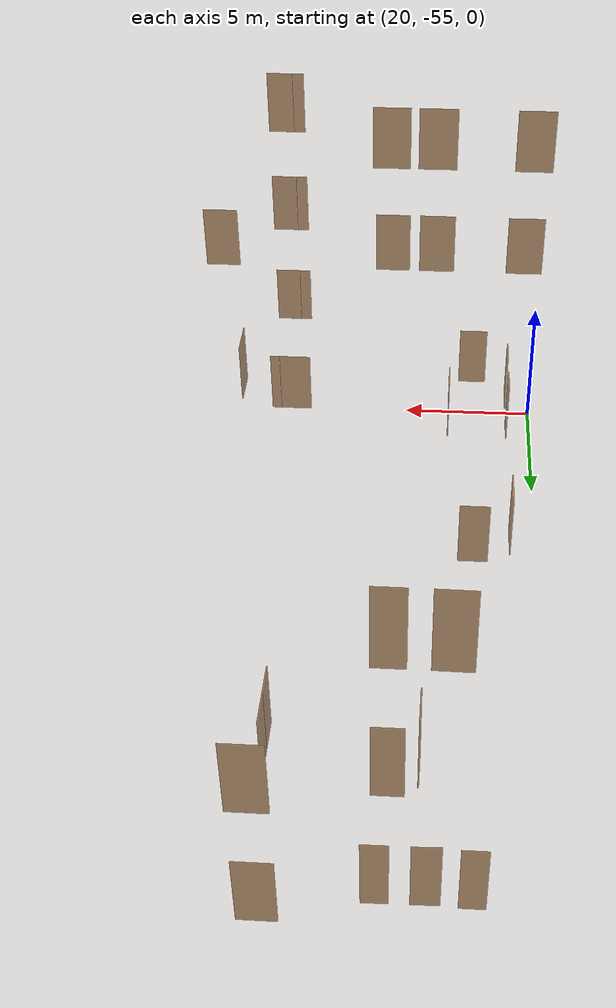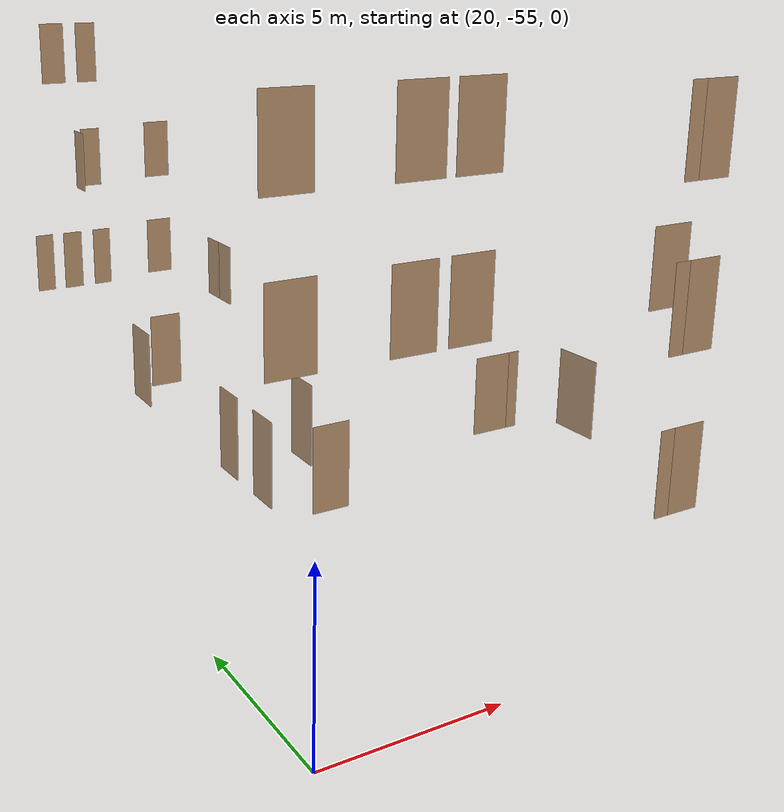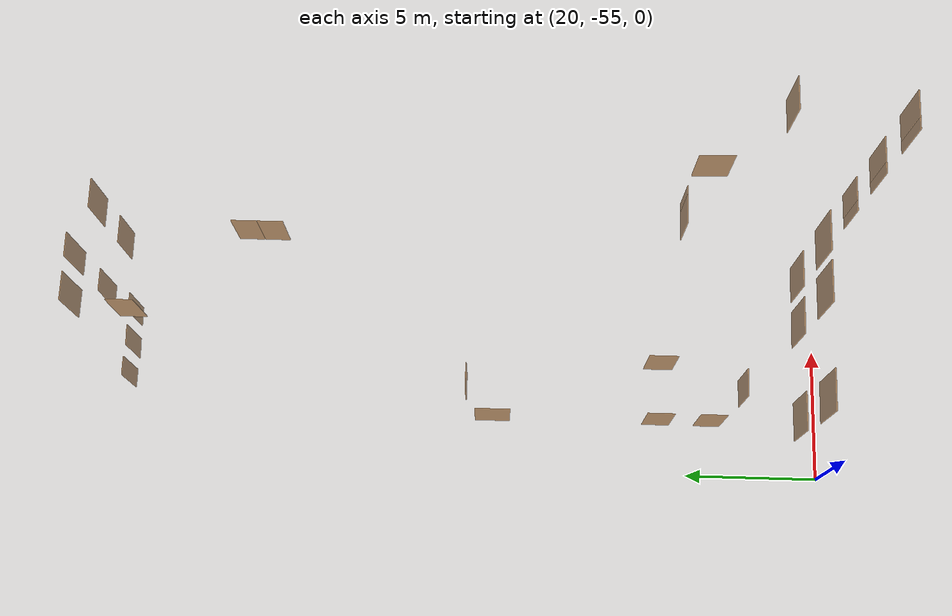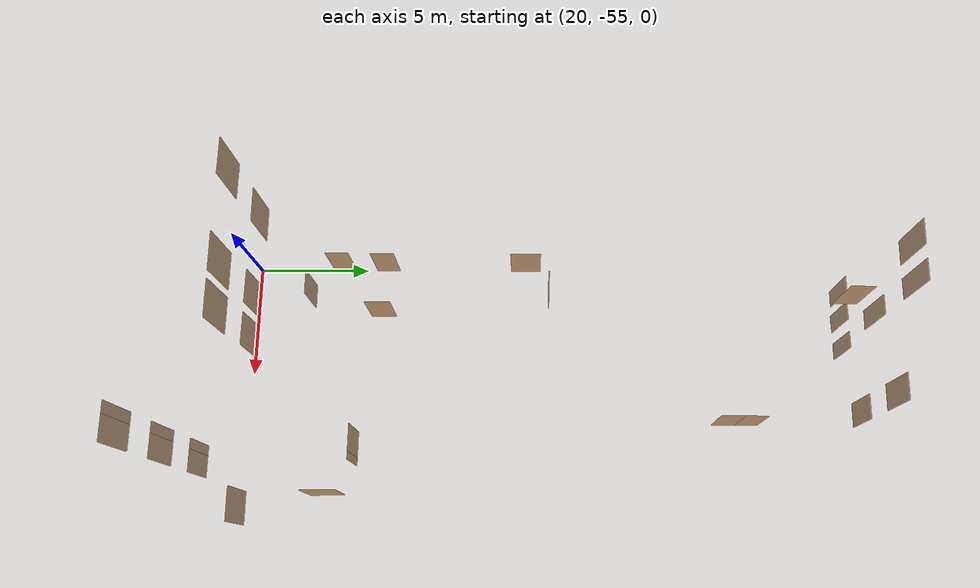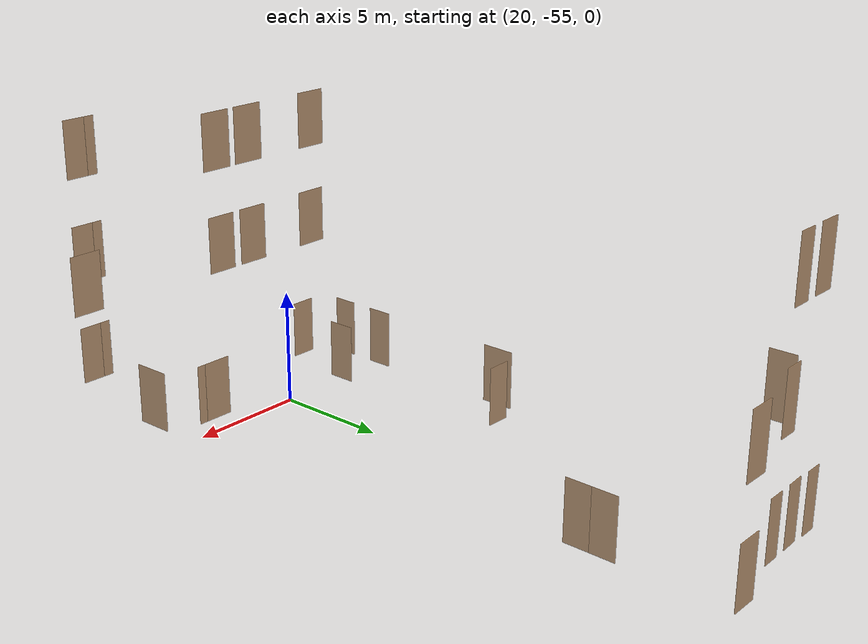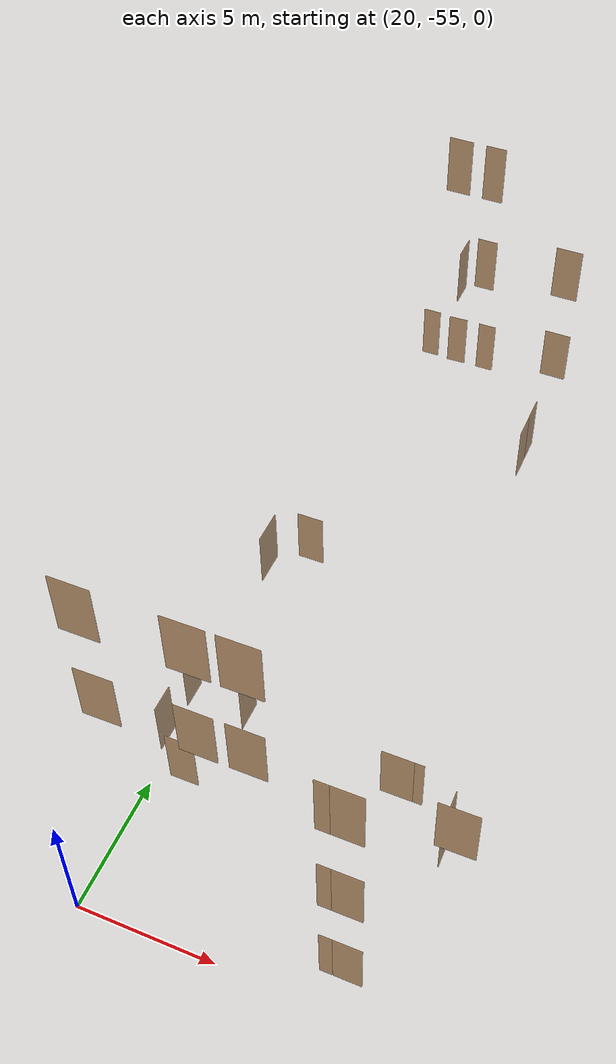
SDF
<sdf version="1.7">
 <world name="sim_world">
  <model name="0null26">
   <pose>27.4428928798118 -28.9351080909532 4.0 0 0 0.0</pose>
   <link name="right">
    <pose>0 0 1.11 0 0 0</pose>
    <visual name="right_visual">
     <geometry><box><size>1.0012384721651786 0.03 2.2</size></box></geometry>
     <material>
      <ambient>0.5 0.25 0 0.6</ambient>
      <diffuse>0.5 0.25 0 0.6</diffuse>
      <pbr><metal><metalness>0.0</metalness></metal></pbr>
     </material>
    </visual>
    <collision name="right_collision">
     <geometry><box><size>1.0012384721651786 0.03 2.2</size></box></geometry>
     <surface><contact><collide_bitmask>0x02</collide_bitmask></contact></surface>
    </collision>
    <inertial>
     <mass>50.0</mass>
     <inertia><ixx>20.17041666666667</ixx><iyy>24.34366032559859</iyy><izz>4.180743658931921</izz></inertia>
    </inertial>
   </link>
   <joint name="right_joint" type="revolute">
    <parent>world</parent>
    <child>right</child>
    <axis><xyz>0 0 1</xyz><limit><lower>0</lower><upper>1.57</upper></limit></axis>
    <pose>0.5056192360825893 0 0 0 0 0</pose>
   </joint>
   <plugin name="register_component" filename="libregister_component.so">
    <component name="Door">
     <v_max_door>0.5</v_max_door>
     <a_max_door>0.3</a_max_door>
     <a_nom_door>0.15</a_nom_door>
     <dx_min_door>0.01</dx_min_door>
     <f_max_door>500.0</f_max_door>
     <ros_interface>true</ros_interface>
     <door name="0null26" type="SwingDoor" left_joint_name="empty_joint" right_joint_name="right_joint"/>
    </component>
   </plugin>
  </model>
  <model name="0null34">
   <pose>27.865829070679144 -33.85503864391589 4.0 0 0 1.5718024222120746</pose>
   <link name="right">
    <pose>0.47316418675498717 0 1.11 0 0 0</pose>
    <visual name="right_visual">
     <geometry><box><size>0.9363283735099743 0.03 2.2</size></box></geometry>
     <material>
      <ambient>0.5 0.25 0 0.6</ambient>
      <diffuse>0.5 0.25 0 0.6</diffuse>
      <pbr><metal><metalness>0.0</metalness></metal></pbr>
     </material>
    </visual>
    <collision name="right_collision">
     <geometry><box><size>0.9363283735099743 0.03 2.2</size></box></geometry>
     <surface><contact><collide_bitmask>0x02</collide_bitmask></contact></surface>
    </collision>
    <inertial>
     <mass>50.0</mass>
     <inertia><ixx>20.17041666666667</ixx><iyy>23.819628429332646</iyy><izz>3.6567117626659758</izz></inertia>
    </inertial>
   </link>
   <joint name="right_joint" type="revolute">
    <parent>world</parent>
    <child>right</child>
    <axis><xyz>0 0 1</xyz><limit><lower>0</lower><upper>1.57</upper></limit></axis>
    <pose>0.47316418675498717 0 0 0 0 0</pose>
   </joint>
   <link name="left">
    <pose>-0.47316418675498717 0 1.11 0 0 0</pose>
    <visual name="left_visual">
     <geometry><box><size>0.9363283735099743 0.03 2.2</size></box></geometry>
     <material>
      <ambient>0.5 0.25 0 0.6</ambient>
      <diffuse>0.5 0.25 0 0.6</diffuse>
      <pbr><metal><metalness>0.0</metalness></metal></pbr>
     </material>
    </visual>
    <collision name="left_collision">
     <geometry><box><size>0.9363283735099743 0.03 2.2</size></box></geometry>
     <surface><contact><collide_bitmask>0x02</collide_bitmask></contact></surface>
    </collision>
    <inertial>
     <mass>50.0</mass>
     <inertia><ixx>20.17041666666667</ixx><iyy>23.819628429332646</iyy><izz>3.6567117626659758</izz></inertia>
    </inertial>
   </link>
   <joint name="left_joint" type="revolute">
    <parent>world</parent>
    <child>left</child>
    <axis><xyz>0 0 1</xyz><limit><lower>-1.57</lower><upper>0</upper></limit></axis>
    <pose>-0.47316418675498717 0 0 0 0 0</pose>
   </joint>
   <plugin name="register_component" filename="libregister_component.so">
    <component name="Door">
     <v_max_door>0.5</v_max_door>
     <a_max_door>0.3</a_max_door>
     <a_nom_door>0.15</a_nom_door>
     <dx_min_door>0.01</dx_min_door>
     <f_max_door>500.0</f_max_door>
     <ros_interface>true</ros_interface>
     <door name="0null34" type="DoubleSwingDoor" left_joint_name="left_joint" right_joint_name="right_joint"/>
    </component>
   </plugin>
  </model>
  <model name="0null35">
   <pose>22.43615353022438 -41.5524773177015 4.0 0 0 0.0</pose>
   <link name="right">
    <pose>0 0 1.11 0 0 0</pose>
    <visual name="right_visual">
     <geometry><box><size>0.9322768173841618 0.03 2.2</size></box></geometry>
     <material>
      <ambient>0.5 0.25 0 0.6</ambient>
      <diffuse>0.5 0.25 0 0.6</diffuse>
      <pbr><metal><metalness>0.0</metalness></metal></pbr>
     </material>
    </visual>
    <collision name="right_collision">
     <geometry><box><size>0.9322768173841618 0.03 2.2</size></box></geometry>
     <surface><contact><collide_bitmask>0x02</collide_bitmask></contact></surface>
    </collision>
    <inertial>
     <mass>50.0</mass>
     <inertia><ixx>20.17041666666667</ixx><iyy>23.788083600966427</iyy><izz>3.6251669342997577</izz></inertia>
    </inertial>
   </link>
   <joint name="right_joint" type="revolute">
    <parent>world</parent>
    <child>right</child>
    <axis><xyz>0 0 1</xyz><limit><lower>0</lower><upper>1.57</upper></limit></axis>
    <pose>0.4711384086920809 0 0 0 0 0</pose>
   </joint>
   <plugin name="register_component" filename="libregister_component.so">
    <component name="Door">
     <v_max_door>0.5</v_max_door>
     <a_max_door>0.3</a_max_door>
     <a_nom_door>0.15</a_nom_door>
     <dx_min_door>0.01</dx_min_door>
     <f_max_door>500.0</f_max_door>
     <ros_interface>true</ros_interface>
     <door name="0null35" type="SwingDoor" left_joint_name="empty_joint" right_joint_name="right_joint"/>
    </component>
   </plugin>
  </model>
  <model name="0null36">
   <pose>21.264962849568743 -42.520535414255285 4.0 0 0 -1.5739242024412845</pose>
   <link name="right">
    <pose>0 0 1.11 0 0 0</pose>
    <visual name="right_visual">
     <geometry><box><size>1.2433758060562836 0.03 2.2</size></box></geometry>
     <material>
      <ambient>0.5 0.25 0 0.6</ambient>
      <diffuse>0.5 0.25 0 0.6</diffuse>
      <pbr><metal><metalness>0.0</metalness></metal></pbr>
     </material>
    </visual>
    <collision name="right_collision">
     <geometry><box><size>1.2433758060562836 0.03 2.2</size></box></geometry>
     <surface><contact><collide_bitmask>0x02</collide_bitmask></contact></surface>
    </collision>
    <inertial>
     <mass>50.0</mass>
     <inertia><ixx>20.17041666666667</ixx><iyy>26.60826414619214</iyy><izz>6.445347479525471</izz></inertia>
    </inertial>
   </link>
   <joint name="right_joint" type="revolute">
    <parent>world</parent>
    <child>right</child>
    <axis><xyz>0 0 1</xyz><limit><lower>0</lower><upper>1.57</upper></limit></axis>
    <pose>0.6266879030281418 0 0 0 0 0</pose>
   </joint>
   <plugin name="register_component" filename="libregister_component.so">
    <component name="Door">
     <v_max_door>0.5</v_max_door>
     <a_max_door>0.3</a_max_door>
     <a_nom_door>0.15</a_nom_door>
     <dx_min_door>0.01</dx_min_door>
     <f_max_door>500.0</f_max_door>
     <ros_interface>true</ros_interface>
     <door name="0null36" type="SwingDoor" left_joint_name="empty_joint" right_joint_name="right_joint"/>
    </component>
   </plugin>
  </model>
  <model name="0null37">
   <pose>21.267333756487307 -48.400533920770606 4.0 0 0 -1.5707963267948966</pose>
   <link name="right">
    <pose>0 0 1.11 0 0 0</pose>
    <visual name="right_visual">
     <geometry><box><size>0.9699126311466182 0.03 2.2</size></box></geometry>
     <material>
      <ambient>0.5 0.25 0 0.6</ambient>
      <diffuse>0.5 0.25 0 0.6</diffuse>
      <pbr><metal><metalness>0.0</metalness></metal></pbr>
     </material>
    </visual>
    <collision name="right_collision">
     <geometry><box><size>0.9699126311466182 0.03 2.2</size></box></geometry>
     <surface><contact><collide_bitmask>0x02</collide_bitmask></contact></surface>
    </collision>
    <inertial>
     <mass>50.0</mass>
     <inertia><ixx>20.17041666666667</ixx><iyy>24.086377133573986</iyy><izz>3.9234604669073163</izz></inertia>
    </inertial>
   </link>
   <joint name="right_joint" type="revolute">
    <parent>world</parent>
    <child>right</child>
    <axis><xyz>0 0 1</xyz><limit><lower>0</lower><upper>1.57</upper></limit></axis>
    <pose>0.4899563155733091 0 0 0 0 0</pose>
   </joint>
   <plugin name="register_component" filename="libregister_component.so">
    <component name="Door">
     <v_max_door>0.5</v_max_door>
     <a_max_door>0.3</a_max_door>
     <a_nom_door>0.15</a_nom_door>
     <dx_min_door>0.01</dx_min_door>
     <f_max_door>500.0</f_max_door>
     <ros_interface>true</ros_interface>
     <door name="0null37" type="SwingDoor" left_joint_name="empty_joint" right_joint_name="right_joint"/>
    </component>
   </plugin>
  </model>
  <model name="0null38">
   <pose>23.314079826755766 -48.501325467647355 4.0 0 0 -1.5707963267948966</pose>
   <link name="right">
    <pose>0 0 1.11 0 0 0</pose>
    <visual name="right_visual">
     <geometry><box><size>1.0411891871709622 0.03 2.2</size></box></geometry>
     <material>
      <ambient>0.5 0.25 0 0.6</ambient>
      <diffuse>0.5 0.25 0 0.6</diffuse>
      <pbr><metal><metalness>0.0</metalness></metal></pbr>
     </material>
    </visual>
    <collision name="right_collision">
     <geometry><box><size>1.0411891871709622 0.03 2.2</size></box></geometry>
     <surface><contact><collide_bitmask>0x02</collide_bitmask></contact></surface>
    </collision>
    <inertial>
     <mass>50.0</mass>
     <inertia><ixx>20.17041666666667</ixx><iyy>24.68364551450721</iyy><izz>4.520728847840537</izz></inertia>
    </inertial>
   </link>
   <joint name="right_joint" type="revolute">
    <parent>world</parent>
    <child>right</child>
    <axis><xyz>0 0 -1</xyz><limit><lower>0</lower><upper>1.57</upper></limit></axis>
    <pose>0.5255945935854811 0 0 0 0 0</pose>
   </joint>
   <plugin name="register_component" filename="libregister_component.so">
    <component name="Door">
     <v_max_door>0.5</v_max_door>
     <a_max_door>0.3</a_max_door>
     <a_nom_door>0.15</a_nom_door>
     <dx_min_door>0.01</dx_min_door>
     <f_max_door>500.0</f_max_door>
     <ros_interface>true</ros_interface>
     <door name="0null38" type="SwingDoor" left_joint_name="empty_joint" right_joint_name="right_joint"/>
    </component>
   </plugin>
  </model>
  <model name="0null39">
   <pose>21.267333756487307 -50.24157114587608 4.0 0 0 1.5707963267948966</pose>
   <link name="right">
    <pose>0 0 1.11 0 0 0</pose>
    <visual name="right_visual">
     <geometry><box><size>0.9402296232684912 0.03 2.2</size></box></geometry>
     <material>
      <ambient>0.5 0.25 0 0.6</ambient>
      <diffuse>0.5 0.25 0 0.6</diffuse>
      <pbr><metal><metalness>0.0</metalness></metal></pbr>
     </material>
    </visual>
    <collision name="right_collision">
     <geometry><box><size>0.9402296232684912 0.03 2.2</size></box></geometry>
     <surface><contact><collide_bitmask>0x02</collide_bitmask></contact></surface>
    </collision>
    <inertial>
     <mass>50.0</mass>
     <inertia><ixx>20.17041666666667</ixx><iyy>23.850132268631707</iyy><izz>3.6872156019650375</izz></inertia>
    </inertial>
   </link>
   <joint name="right_joint" type="revolute">
    <parent>world</parent>
    <child>right</child>
    <axis><xyz>0 0 -1</xyz><limit><lower>0</lower><upper>1.57</upper></limit></axis>
    <pose>0.4751148116342456 0 0 0 0 0</pose>
   </joint>
   <plugin name="register_component" filename="libregister_component.so">
    <component name="Door">
     <v_max_door>0.5</v_max_door>
     <a_max_door>0.3</a_max_door>
     <a_nom_door>0.15</a_nom_door>
     <dx_min_door>0.01</dx_min_door>
     <f_max_door>500.0</f_max_door>
     <ros_interface>true</ros_interface>
     <door name="0null39" type="SwingDoor" left_joint_name="empty_joint" right_joint_name="right_joint"/>
    </component>
   </plugin>
  </model>
  <model name="0null40">
   <pose>22.471119740133652 -51.43594817608181 4.0 0 0 3.141592653589793</pose>
   <link name="right">
    <pose>0 0 1.11 0 0 0</pose>
    <visual name="right_visual">
     <geometry><box><size>0.973310308777952 0.03 2.2</size></box></geometry>
     <material>
      <ambient>0.5 0.25 0 0.6</ambient>
      <diffuse>0.5 0.25 0 0.6</diffuse>
      <pbr><metal><metalness>0.0</metalness></metal></pbr>
     </material>
    </visual>
    <collision name="right_collision">
     <geometry><box><size>0.973310308777952 0.03 2.2</size></box></geometry>
     <surface><contact><collide_bitmask>0x02</collide_bitmask></contact></surface>
    </collision>
    <inertial>
     <mass>50.0</mass>
     <inertia><ixx>20.17041666666667</ixx><iyy>24.11388732155597</iyy><izz>3.9509706548893013</izz></inertia>
    </inertial>
   </link>
   <joint name="right_joint" type="revolute">
    <parent>world</parent>
    <child>right</child>
    <axis><xyz>0 0 -1</xyz><limit><lower>0</lower><upper>1.57</upper></limit></axis>
    <pose>0.491655154388976 0 0 0 0 0</pose>
   </joint>
   <plugin name="register_component" filename="libregister_component.so">
    <component name="Door">
     <v_max_door>0.5</v_max_door>
     <a_max_door>0.3</a_max_door>
     <a_nom_door>0.15</a_nom_door>
     <dx_min_door>0.01</dx_min_door>
     <f_max_door>500.0</f_max_door>
     <ros_interface>true</ros_interface>
     <door name="0null40" type="SwingDoor" left_joint_name="empty_joint" right_joint_name="right_joint"/>
    </component>
   </plugin>
  </model>
  <model name="0null41">
   <pose>28.96070268453868 -49.36437292312284 4.0 0 0 0.0</pose>
   <link name="right">
    <pose>0.5437863857383691 0 1.11 0 0 0</pose>
    <visual name="right_visual">
     <geometry><box><size>0.3162718314430214 0.03 2.2</size></box></geometry>
     <material>
      <ambient>0.5 0.25 0 0.6</ambient>
      <diffuse>0.5 0.25 0 0.6</diffuse>
      <pbr><metal><metalness>0.0</metalness></metal></pbr>
     </material>
    </visual>
    <collision name="right_collision">
     <geometry><box><size>0.3162718314430214 0.03 2.2</size></box></geometry>
     <surface><contact><collide_bitmask>0x02</collide_bitmask></contact></surface>
    </collision>
    <inertial>
     <mass>50.0</mass>
     <inertia><ixx>20.17041666666667</ixx><iyy>20.583449464018017</iyy><izz>0.4205327973513456</izz></inertia>
    </inertial>
   </link>
   <joint name="right_joint" type="revolute">
    <parent>world</parent>
    <child>right</child>
    <axis><xyz>0 0 -1</xyz><limit><lower>0</lower><upper>1.57</upper></limit></axis>
    <pose>0.1631359157215107 0 0 0 0 0</pose>
   </joint>
   <link name="left">
    <pose>-0.16313591572151065 0 1.11 0 0 0</pose>
    <visual name="left_visual">
     <geometry><box><size>1.0775727714767382 0.03 2.2</size></box></geometry>
     <material>
      <ambient>0.5 0.25 0 0.6</ambient>
      <diffuse>0.5 0.25 0 0.6</diffuse>
      <pbr><metal><metalness>0.0</metalness></metal></pbr>
     </material>
    </visual>
    <collision name="left_collision">
     <geometry><box><size>1.0775727714767382 0.03 2.2</size></box></geometry>
     <surface><contact><collide_bitmask>0x02</collide_bitmask></contact></surface>
    </collision>
    <inertial>
     <mass>50.0</mass>
     <inertia><ixx>20.17041666666667</ixx><iyy>25.004846157616917</iyy><izz>4.841929490950245</izz></inertia>
    </inertial>
   </link>
   <joint name="left_joint" type="revolute">
    <parent>world</parent>
    <child>left</child>
    <axis><xyz>0 0 -1</xyz><limit><lower>-1.57</lower><upper>0</upper></limit></axis>
    <pose>-0.5437863857383691 0 0 0 0 0</pose>
   </joint>
   <plugin name="register_component" filename="libregister_component.so">
    <component name="Door">
     <v_max_door>0.5</v_max_door>
     <a_max_door>0.3</a_max_door>
     <a_nom_door>0.15</a_nom_door>
     <dx_min_door>0.01</dx_min_door>
     <f_max_door>500.0</f_max_door>
     <ros_interface>true</ros_interface>
     <door name="0null41" type="DoubleSwingDoor" left_joint_name="left_joint" right_joint_name="right_joint"/>
    </component>
   </plugin>
  </model>
  <model name="0null42">
   <pose>30.847141843706808 -50.4685248105141 4.0 0 0 1.5911566741003251</pose>
   <link name="right">
    <pose>0 0 1.11 0 0 0</pose>
    <visual name="right_visual">
     <geometry><box><size>1.3617886358121807 0.03 2.2</size></box></geometry>
     <material>
      <ambient>0.5 0.25 0 0.6</ambient>
      <diffuse>0.5 0.25 0 0.6</diffuse>
      <pbr><metal><metalness>0.0</metalness></metal></pbr>
     </material>
    </visual>
    <collision name="right_collision">
     <geometry><box><size>1.3617886358121807 0.03 2.2</size></box></geometry>
     <surface><contact><collide_bitmask>0x02</collide_bitmask></contact></surface>
    </collision>
    <inertial>
     <mass>50.0</mass>
     <inertia><ixx>20.17041666666667</ixx><iyy>27.893617869280007</iyy><izz>7.730701202613334</izz></inertia>
    </inertial>
   </link>
   <joint name="right_joint" type="revolute">
    <parent>world</parent>
    <child>right</child>
    <axis><xyz>0 0 1</xyz><limit><lower>0</lower><upper>1.57</upper></limit></axis>
    <pose>0.6858943179060903 0 0 0 0 0</pose>
   </joint>
   <plugin name="register_component" filename="libregister_component.so">
    <component name="Door">
     <v_max_door>0.5</v_max_door>
     <a_max_door>0.3</a_max_door>
     <a_nom_door>0.15</a_nom_door>
     <dx_min_door>0.01</dx_min_door>
     <f_max_door>500.0</f_max_door>
     <ros_interface>true</ros_interface>
     <door name="0null42" type="SwingDoor" left_joint_name="empty_joint" right_joint_name="right_joint"/>
    </component>
   </plugin>
  </model>
  <model name="0null43">
   <pose>29.536833065750642 -55.49008699548217 4.0 0 0 0.0</pose>
   <link name="right">
    <pose>0.20702264496135603 0 1.11 0 0 0</pose>
    <visual name="right_visual">
     <geometry><box><size>0.9008996378299665 0.03 2.2</size></box></geometry>
     <material>
      <ambient>0.5 0.25 0 0.6</ambient>
      <diffuse>0.5 0.25 0 0.6</diffuse>
      <pbr><metal><metalness>0.0</metalness></metal></pbr>
     </material>
    </visual>
    <collision name="right_collision">
     <geometry><box><size>0.9008996378299665 0.03 2.2</size></box></geometry>
     <surface><contact><collide_bitmask>0x02</collide_bitmask></contact></surface>
    </collision>
    <inertial>
     <mass>50.0</mass>
     <inertia><ixx>20.17041666666667</ixx><iyy>23.54841732267569</iyy><izz>3.3855006560090204</izz></inertia>
    </inertial>
   </link>
   <joint name="right_joint" type="revolute">
    <parent>world</parent>
    <child>right</child>
    <axis><xyz>0 0 -1</xyz><limit><lower>0</lower><upper>1.57</upper></limit></axis>
    <pose>0.45544981891498326 0 0 0 0 0</pose>
   </joint>
   <link name="left">
    <pose>-0.45544981891498326 0 1.11 0 0 0</pose>
    <visual name="left_visual">
     <geometry><box><size>0.40404528992271205 0.03 2.2</size></box></geometry>
     <material>
      <ambient>0.5 0.25 0 0.6</ambient>
      <diffuse>0.5 0.25 0 0.6</diffuse>
      <pbr><metal><metalness>0.0</metalness></metal></pbr>
     </material>
    </visual>
    <collision name="left_collision">
     <geometry><box><size>0.40404528992271205 0.03 2.2</size></box></geometry>
     <surface><contact><collide_bitmask>0x02</collide_bitmask></contact></surface>
    </collision>
    <inertial>
     <mass>50.0</mass>
     <inertia><ixx>20.17041666666667</ixx><iyy>20.84688581795304</iyy><izz>0.6839691512863686</izz></inertia>
    </inertial>
   </link>
   <joint name="left_joint" type="revolute">
    <parent>world</parent>
    <child>left</child>
    <axis><xyz>0 0 -1</xyz><limit><lower>-1.57</lower><upper>0</upper></limit></axis>
    <pose>-0.20702264496135603 0 0 0 0 0</pose>
   </joint>
   <plugin name="register_component" filename="libregister_component.so">
    <component name="Door">
     <v_max_door>0.5</v_max_door>
     <a_max_door>0.3</a_max_door>
     <a_nom_door>0.15</a_nom_door>
     <dx_min_door>0.01</dx_min_door>
     <f_max_door>500.0</f_max_door>
     <ros_interface>true</ros_interface>
     <door name="0null43" type="DoubleSwingDoor" left_joint_name="left_joint" right_joint_name="right_joint"/>
    </component>
   </plugin>
  </model>
  <model name="nullZ1">
   <pose>22.439196505245853 -29.53519023261022 4.0 0 0 0.0020044516584664914</pose>
   <link name="right">
    <pose>0 0 1.11 0 0 0</pose>
    <visual name="right_visual">
     <geometry><box><size>0.6605759653564555 0.03 2.2</size></box></geometry>
     <material>
      <ambient>0.5 0.25 0 0.6</ambient>
      <diffuse>0.5 0.25 0 0.6</diffuse>
      <pbr><metal><metalness>0.0</metalness></metal></pbr>
     </material>
    </visual>
    <collision name="right_collision">
     <geometry><box><size>0.6605759653564555 0.03 2.2</size></box></geometry>
     <surface><contact><collide_bitmask>0x02</collide_bitmask></contact></surface>
    </collision>
    <inertial>
     <mass>50.0</mass>
     <inertia><ixx>20.17041666666667</ixx><iyy>21.984835858360896</iyy><izz>1.8219191916942212</izz></inertia>
    </inertial>
   </link>
   <joint name="right_joint" type="revolute">
    <parent>world</parent>
    <child>right</child>
    <axis><xyz>0 0 -1</xyz><limit><lower>0</lower><upper>1.57</upper></limit></axis>
    <pose>0.33528798267822774 0 0 0 0 0</pose>
   </joint>
   <plugin name="register_component" filename="libregister_component.so">
    <component name="Door">
     <v_max_door>0.5</v_max_door>
     <a_max_door>0.3</a_max_door>
     <a_nom_door>0.15</a_nom_door>
     <dx_min_door>0.01</dx_min_door>
     <f_max_door>500.0</f_max_door>
     <ros_interface>true</ros_interface>
     <door name="nullZ1" type="SwingDoor" left_joint_name="empty_joint" right_joint_name="right_joint"/>
    </component>
   </plugin>
  </model>
  <model name="nullZ2">
   <pose>23.548034200798995 -29.56659074786243 4.0 0 0 0.03413457394522898</pose>
   <link name="right">
    <pose>0 0 1.11 0 0 0</pose>
    <visual name="right_visual">
     <geometry><box><size>0.7208143992394201 0.03 2.2</size></box></geometry>
     <material>
      <ambient>0.5 0.25 0 0.6</ambient>
      <diffuse>0.5 0.25 0 0.6</diffuse>
      <pbr><metal><metalness>0.0</metalness></metal></pbr>
     </material>
    </visual>
    <collision name="right_collision">
     <geometry><box><size>0.7208143992394201 0.03 2.2</size></box></geometry>
     <surface><contact><collide_bitmask>0x02</collide_bitmask></contact></surface>
    </collision>
    <inertial>
     <mass>50.0</mass>
     <inertia><ixx>20.17041666666667</ixx><iyy>22.331555825628694</iyy><izz>2.168639158962026</izz></inertia>
    </inertial>
   </link>
   <joint name="right_joint" type="revolute">
    <parent>world</parent>
    <child>right</child>
    <axis><xyz>0 0 -1</xyz><limit><lower>0</lower><upper>1.57</upper></limit></axis>
    <pose>0.3654071996197101 0 0 0 0 0</pose>
   </joint>
   <plugin name="register_component" filename="libregister_component.so">
    <component name="Door">
     <v_max_door>0.5</v_max_door>
     <a_max_door>0.3</a_max_door>
     <a_nom_door>0.15</a_nom_door>
     <dx_min_door>0.01</dx_min_door>
     <f_max_door>500.0</f_max_door>
     <ros_interface>true</ros_interface>
     <door name="nullZ2" type="SwingDoor" left_joint_name="empty_joint" right_joint_name="right_joint"/>
    </component>
   </plugin>
  </model>
  <model name="nullZ3">
   <pose>24.741757831460237 -29.546279356308084 4.0 0 0 0.011475533185895583</pose>
   <link name="right">
    <pose>0 0 1.11 0 0 0</pose>
    <visual name="right_visual">
     <geometry><box><size>0.6732768899752665 0.03 2.2</size></box></geometry>
     <material>
      <ambient>0.5 0.25 0 0.6</ambient>
      <diffuse>0.5 0.25 0 0.6</diffuse>
      <pbr><metal><metalness>0.0</metalness></metal></pbr>
     </material>
    </visual>
    <collision name="right_collision">
     <geometry><box><size>0.6732768899752665 0.03 2.2</size></box></geometry>
     <surface><contact><collide_bitmask>0x02</collide_bitmask></contact></surface>
    </collision>
    <inertial>
     <mass>50.0</mass>
     <inertia><ixx>20.17041666666667</ixx><iyy>22.055424044061535</iyy><izz>1.8925073773948629</izz></inertia>
    </inertial>
   </link>
   <joint name="right_joint" type="revolute">
    <parent>world</parent>
    <child>right</child>
    <axis><xyz>0 0 -1</xyz><limit><lower>0</lower><upper>1.57</upper></limit></axis>
    <pose>0.34163844498763324 0 0 0 0 0</pose>
   </joint>
   <plugin name="register_component" filename="libregister_component.so">
    <component name="Door">
     <v_max_door>0.5</v_max_door>
     <a_max_door>0.3</a_max_door>
     <a_nom_door>0.15</a_nom_door>
     <dx_min_door>0.01</dx_min_door>
     <f_max_door>500.0</f_max_door>
     <ros_interface>true</ros_interface>
     <door name="nullZ3" type="SwingDoor" left_joint_name="empty_joint" right_joint_name="right_joint"/>
    </component>
   </plugin>
  </model>
  <model name="1null26">
   <pose>27.4428928798118 -28.9351080909532 8.0 0 0 0.0</pose>
   <link name="right">
    <pose>0 0 1.11 0 0 0</pose>
    <visual name="right_visual">
     <geometry><box><size>1.0012384721651786 0.03 2.2</size></box></geometry>
     <material>
      <ambient>0.5 0.25 0 0.6</ambient>
      <diffuse>0.5 0.25 0 0.6</diffuse>
      <pbr><metal><metalness>0.0</metalness></metal></pbr>
     </material>
    </visual>
    <collision name="right_collision">
     <geometry><box><size>1.0012384721651786 0.03 2.2</size></box></geometry>
     <surface><contact><collide_bitmask>0x02</collide_bitmask></contact></surface>
    </collision>
    <inertial>
     <mass>50.0</mass>
     <inertia><ixx>20.17041666666667</ixx><iyy>24.34366032559859</iyy><izz>4.180743658931921</izz></inertia>
    </inertial>
   </link>
   <joint name="right_joint" type="revolute">
    <parent>world</parent>
    <child>right</child>
    <axis><xyz>0 0 1</xyz><limit><lower>0</lower><upper>1.57</upper></limit></axis>
    <pose>0.5056192360825893 0 0 0 0 0</pose>
   </joint>
   <plugin name="register_component" filename="libregister_component.so">
    <component name="Door">
     <v_max_door>0.5</v_max_door>
     <a_max_door>0.3</a_max_door>
     <a_nom_door>0.15</a_nom_door>
     <dx_min_door>0.01</dx_min_door>
     <f_max_door>500.0</f_max_door>
     <ros_interface>true</ros_interface>
     <door name="1null26" type="SwingDoor" left_joint_name="empty_joint" right_joint_name="right_joint"/>
    </component>
   </plugin>
  </model>
  <model name="1null43">
   <pose>29.536833065750642 -55.49008699548217 8.0 0 0 0.0</pose>
   <link name="right">
    <pose>0.20702264496135603 0 1.11 0 0 0</pose>
    <visual name="right_visual">
     <geometry><box><size>0.9008996378299665 0.03 2.2</size></box></geometry>
     <material>
      <ambient>0.5 0.25 0 0.6</ambient>
      <diffuse>0.5 0.25 0 0.6</diffuse>
      <pbr><metal><metalness>0.0</metalness></metal></pbr>
     </material>
    </visual>
    <collision name="right_collision">
     <geometry><box><size>0.9008996378299665 0.03 2.2</size></box></geometry>
     <surface><contact><collide_bitmask>0x02</collide_bitmask></contact></surface>
    </collision>
    <inertial>
     <mass>50.0</mass>
     <inertia><ixx>20.17041666666667</ixx><iyy>23.54841732267569</iyy><izz>3.3855006560090204</izz></inertia>
    </inertial>
   </link>
   <joint name="right_joint" type="revolute">
    <parent>world</parent>
    <child>right</child>
    <axis><xyz>0 0 -1</xyz><limit><lower>0</lower><upper>1.57</upper></limit></axis>
    <pose>0.45544981891498326 0 0 0 0 0</pose>
   </joint>
   <link name="left">
    <pose>-0.45544981891498326 0 1.11 0 0 0</pose>
    <visual name="left_visual">
     <geometry><box><size>0.40404528992271205 0.03 2.2</size></box></geometry>
     <material>
      <ambient>0.5 0.25 0 0.6</ambient>
      <diffuse>0.5 0.25 0 0.6</diffuse>
      <pbr><metal><metalness>0.0</metalness></metal></pbr>
     </material>
    </visual>
    <collision name="left_collision">
     <geometry><box><size>0.40404528992271205 0.03 2.2</size></box></geometry>
     <surface><contact><collide_bitmask>0x02</collide_bitmask></contact></surface>
    </collision>
    <inertial>
     <mass>50.0</mass>
     <inertia><ixx>20.17041666666667</ixx><iyy>20.84688581795304</iyy><izz>0.6839691512863686</izz></inertia>
    </inertial>
   </link>
   <joint name="left_joint" type="revolute">
    <parent>world</parent>
    <child>left</child>
    <axis><xyz>0 0 -1</xyz><limit><lower>-1.57</lower><upper>0</upper></limit></axis>
    <pose>-0.20702264496135603 0 0 0 0 0</pose>
   </joint>
   <plugin name="register_component" filename="libregister_component.so">
    <component name="Door">
     <v_max_door>0.5</v_max_door>
     <a_max_door>0.3</a_max_door>
     <a_nom_door>0.15</a_nom_door>
     <dx_min_door>0.01</dx_min_door>
     <f_max_door>500.0</f_max_door>
     <ros_interface>true</ros_interface>
     <door name="1null43" type="DoubleSwingDoor" left_joint_name="left_joint" right_joint_name="right_joint"/>
    </component>
   </plugin>
  </model>
  <model name="1null86">
   <pose>24.45110704551393 -29.54904230295335 8.0 0 0 0.0</pose>
   <link name="right">
    <pose>0 0 1.11 0 0 0</pose>
    <visual name="right_visual">
     <geometry><box><size>0.7457032445954555 0.03 2.2</size></box></geometry>
     <material>
      <ambient>0.5 0.25 0 0.6</ambient>
      <diffuse>0.5 0.25 0 0.6</diffuse>
      <pbr><metal><metalness>0.0</metalness></metal></pbr>
     </material>
    </visual>
    <collision name="right_collision">
     <geometry><box><size>0.7457032445954555 0.03 2.2</size></box></geometry>
     <surface><contact><collide_bitmask>0x02</collide_bitmask></contact></surface>
    </collision>
    <inertial>
     <mass>50.0</mass>
     <inertia><ixx>20.17041666666667</ixx><iyy>22.483638870834127</iyy><izz>2.320722204167457</izz></inertia>
    </inertial>
   </link>
   <joint name="right_joint" type="revolute">
    <parent>world</parent>
    <child>right</child>
    <axis><xyz>0 0 -1</xyz><limit><lower>0</lower><upper>1.57</upper></limit></axis>
    <pose>0.37785162229772773 0 0 0 0 0</pose>
   </joint>
   <plugin name="register_component" filename="libregister_component.so">
    <component name="Door">
     <v_max_door>0.5</v_max_door>
     <a_max_door>0.3</a_max_door>
     <a_nom_door>0.15</a_nom_door>
     <dx_min_door>0.01</dx_min_door>
     <f_max_door>500.0</f_max_door>
     <ros_interface>true</ros_interface>
     <door name="1null86" type="SwingDoor" left_joint_name="empty_joint" right_joint_name="right_joint"/>
    </component>
   </plugin>
  </model>
  <model name="1null89">
   <pose>23.786189000485365 -30.238901542022905 8.0 0 0 -1.5768788298289724</pose>
   <link name="right">
    <pose>0 0 1.11 0 0 0</pose>
    <visual name="right_visual">
     <geometry><box><size>0.916911071589999 0.03 2.2</size></box></geometry>
     <material>
      <ambient>0.5 0.25 0 0.6</ambient>
      <diffuse>0.5 0.25 0 0.6</diffuse>
      <pbr><metal><metalness>0.0</metalness></metal></pbr>
     </material>
    </visual>
    <collision name="right_collision">
     <geometry><box><size>0.916911071589999 0.03 2.2</size></box></geometry>
     <surface><contact><collide_bitmask>0x02</collide_bitmask></contact></surface>
    </collision>
    <inertial>
     <mass>50.0</mass>
     <inertia><ixx>20.17041666666667</ixx><iyy>23.669691305018006</iyy><izz>3.5067746383513345</izz></inertia>
    </inertial>
   </link>
   <joint name="right_joint" type="revolute">
    <parent>world</parent>
    <child>right</child>
    <axis><xyz>0 0 1</xyz><limit><lower>0</lower><upper>1.57</upper></limit></axis>
    <pose>0.4634555357949995 0 0 0 0 0</pose>
   </joint>
   <plugin name="register_component" filename="libregister_component.so">
    <component name="Door">
     <v_max_door>0.5</v_max_door>
     <a_max_door>0.3</a_max_door>
     <a_nom_door>0.15</a_nom_door>
     <dx_min_door>0.01</dx_min_door>
     <f_max_door>500.0</f_max_door>
     <ros_interface>true</ros_interface>
     <door name="1null89" type="SwingDoor" left_joint_name="empty_joint" right_joint_name="right_joint"/>
    </component>
   </plugin>
  </model>
  <model name="1null90">
   <pose>20.760557069783058 -52.60523466377923 8.0 0 0 0.00693109677061986</pose>
   <link name="right">
    <pose>0 0 1.11 0 0 0</pose>
    <visual name="right_visual">
     <geometry><box><size>1.2828660618654428 0.03 2.2</size></box></geometry>
     <material>
      <ambient>0.5 0.25 0 0.6</ambient>
      <diffuse>0.5 0.25 0 0.6</diffuse>
      <pbr><metal><metalness>0.0</metalness></metal></pbr>
     </material>
    </visual>
    <collision name="right_collision">
     <geometry><box><size>1.2828660618654428 0.03 2.2</size></box></geometry>
     <surface><contact><collide_bitmask>0x02</collide_bitmask></contact></surface>
    </collision>
    <inertial>
     <mass>50.0</mass>
     <inertia><ixx>20.17041666666667</ixx><iyy>27.023938886192298</iyy><izz>6.861022219525626</izz></inertia>
    </inertial>
   </link>
   <joint name="right_joint" type="revolute">
    <parent>world</parent>
    <child>right</child>
    <axis><xyz>0 0 1</xyz><limit><lower>0</lower><upper>1.57</upper></limit></axis>
    <pose>0.6464330309327214 0 0 0 0 0</pose>
   </joint>
   <plugin name="register_component" filename="libregister_component.so">
    <component name="Door">
     <v_max_door>0.5</v_max_door>
     <a_max_door>0.3</a_max_door>
     <a_nom_door>0.15</a_nom_door>
     <dx_min_door>0.01</dx_min_door>
     <f_max_door>500.0</f_max_door>
     <ros_interface>true</ros_interface>
     <door name="1null90" type="SwingDoor" left_joint_name="empty_joint" right_joint_name="right_joint"/>
    </component>
   </plugin>
  </model>
  <model name="1null91">
   <pose>23.911884404286287 -52.61421424037633 8.0 0 0 -0.007158860591732132</pose>
   <link name="right">
    <pose>0 0 1.11 0 0 0</pose>
    <visual name="right_visual">
     <geometry><box><size>1.2469489096212298 0.03 2.2</size></box></geometry>
     <material>
      <ambient>0.5 0.25 0 0.6</ambient>
      <diffuse>0.5 0.25 0 0.6</diffuse>
      <pbr><metal><metalness>0.0</metalness></metal></pbr>
     </material>
    </visual>
    <collision name="right_collision">
     <geometry><box><size>1.2469489096212298 0.03 2.2</size></box></geometry>
     <surface><contact><collide_bitmask>0x02</collide_bitmask></contact></surface>
    </collision>
    <inertial>
     <mass>50.0</mass>
     <inertia><ixx>20.17041666666667</ixx><iyy>26.64533993002323</iyy><izz>6.482423263356559</izz></inertia>
    </inertial>
   </link>
   <joint name="right_joint" type="revolute">
    <parent>world</parent>
    <child>right</child>
    <axis><xyz>0 0 1</xyz><limit><lower>0</lower><upper>1.57</upper></limit></axis>
    <pose>0.6284744548106149 0 0 0 0 0</pose>
   </joint>
   <plugin name="register_component" filename="libregister_component.so">
    <component name="Door">
     <v_max_door>0.5</v_max_door>
     <a_max_door>0.3</a_max_door>
     <a_nom_door>0.15</a_nom_door>
     <dx_min_door>0.01</dx_min_door>
     <f_max_door>500.0</f_max_door>
     <ros_interface>true</ros_interface>
     <door name="1null91" type="SwingDoor" left_joint_name="empty_joint" right_joint_name="right_joint"/>
    </component>
   </plugin>
  </model>
  <model name="1null92">
   <pose>25.49583691147368 -52.61425157749315 8.0 0 0 3.1377169405739256</pose>
   <link name="right">
    <pose>0 0 1.11 0 0 0</pose>
    <visual name="right_visual">
     <geometry><box><size>1.2134718331809198 0.03 2.2</size></box></geometry>
     <material>
      <ambient>0.5 0.25 0 0.6</ambient>
      <diffuse>0.5 0.25 0 0.6</diffuse>
      <pbr><metal><metalness>0.0</metalness></metal></pbr>
     </material>
    </visual>
    <collision name="right_collision">
     <geometry><box><size>1.2134718331809198 0.03 2.2</size></box></geometry>
     <surface><contact><collide_bitmask>0x02</collide_bitmask></contact></surface>
    </collision>
    <inertial>
     <mass>50.0</mass>
     <inertia><ixx>20.17041666666667</ixx><iyy>26.30214120801443</iyy><izz>6.139224541347758</izz></inertia>
    </inertial>
   </link>
   <joint name="right_joint" type="revolute">
    <parent>world</parent>
    <child>right</child>
    <axis><xyz>0 0 -1</xyz><limit><lower>0</lower><upper>1.57</upper></limit></axis>
    <pose>0.6117359165904599 0 0 0 0 0</pose>
   </joint>
   <plugin name="register_component" filename="libregister_component.so">
    <component name="Door">
     <v_max_door>0.5</v_max_door>
     <a_max_door>0.3</a_max_door>
     <a_nom_door>0.15</a_nom_door>
     <dx_min_door>0.01</dx_min_door>
     <f_max_door>500.0</f_max_door>
     <ros_interface>true</ros_interface>
     <door name="1null92" type="SwingDoor" left_joint_name="empty_joint" right_joint_name="right_joint"/>
    </component>
   </plugin>
  </model>
  <model name="nullnuevo">
   <pose>31.70302057275135 -52.64021954224691 8.0 0 0 -3.136844409004198</pose>
   <link name="right">
    <pose>0 0 1.11 0 0 0</pose>
    <visual name="right_visual">
     <geometry><box><size>1.2166874645772883 0.03 2.2</size></box></geometry>
     <material>
      <ambient>0.5 0.25 0 0.6</ambient>
      <diffuse>0.5 0.25 0 0.6</diffuse>
      <pbr><metal><metalness>0.0</metalness></metal></pbr>
     </material>
    </visual>
    <collision name="right_collision">
     <geometry><box><size>1.2166874645772883 0.03 2.2</size></box></geometry>
     <surface><contact><collide_bitmask>0x02</collide_bitmask></contact></surface>
    </collision>
    <inertial>
     <mass>50.0</mass>
     <inertia><ixx>20.17041666666667</ixx><iyy>26.33470161024796</iyy><izz>6.171784943581292</izz></inertia>
    </inertial>
   </link>
   <joint name="right_joint" type="revolute">
    <parent>world</parent>
    <child>right</child>
    <axis><xyz>0 0 -1</xyz><limit><lower>0</lower><upper>1.57</upper></limit></axis>
    <pose>0.6133437322886441 0 0 0 0 0</pose>
   </joint>
   <plugin name="register_component" filename="libregister_component.so">
    <component name="Door">
     <v_max_door>0.5</v_max_door>
     <a_max_door>0.3</a_max_door>
     <a_nom_door>0.15</a_nom_door>
     <dx_min_door>0.01</dx_min_door>
     <f_max_door>500.0</f_max_door>
     <ros_interface>true</ros_interface>
     <door name="nullnuevo" type="SwingDoor" left_joint_name="empty_joint" right_joint_name="right_joint"/>
    </component>
   </plugin>
  </model>
  <model name="2null43">
   <pose>29.536833065750642 -55.49008699548217 12.0 0 0 0.0</pose>
   <link name="right">
    <pose>0.20702264496135603 0 1.11 0 0 0</pose>
    <visual name="right_visual">
     <geometry><box><size>0.9008996378299665 0.03 2.2</size></box></geometry>
     <material>
      <ambient>0.5 0.25 0 0.6</ambient>
      <diffuse>0.5 0.25 0 0.6</diffuse>
      <pbr><metal><metalness>0.0</metalness></metal></pbr>
     </material>
    </visual>
    <collision name="right_collision">
     <geometry><box><size>0.9008996378299665 0.03 2.2</size></box></geometry>
     <surface><contact><collide_bitmask>0x02</collide_bitmask></contact></surface>
    </collision>
    <inertial>
     <mass>50.0</mass>
     <inertia><ixx>20.17041666666667</ixx><iyy>23.54841732267569</iyy><izz>3.3855006560090204</izz></inertia>
    </inertial>
   </link>
   <joint name="right_joint" type="revolute">
    <parent>world</parent>
    <child>right</child>
    <axis><xyz>0 0 -1</xyz><limit><lower>0</lower><upper>1.57</upper></limit></axis>
    <pose>0.45544981891498326 0 0 0 0 0</pose>
   </joint>
   <link name="left">
    <pose>-0.45544981891498326 0 1.11 0 0 0</pose>
    <visual name="left_visual">
     <geometry><box><size>0.40404528992271205 0.03 2.2</size></box></geometry>
     <material>
      <ambient>0.5 0.25 0 0.6</ambient>
      <diffuse>0.5 0.25 0 0.6</diffuse>
      <pbr><metal><metalness>0.0</metalness></metal></pbr>
     </material>
    </visual>
    <collision name="left_collision">
     <geometry><box><size>0.40404528992271205 0.03 2.2</size></box></geometry>
     <surface><contact><collide_bitmask>0x02</collide_bitmask></contact></surface>
    </collision>
    <inertial>
     <mass>50.0</mass>
     <inertia><ixx>20.17041666666667</ixx><iyy>20.84688581795304</iyy><izz>0.6839691512863686</izz></inertia>
    </inertial>
   </link>
   <joint name="left_joint" type="revolute">
    <parent>world</parent>
    <child>left</child>
    <axis><xyz>0 0 -1</xyz><limit><lower>-1.57</lower><upper>0</upper></limit></axis>
    <pose>-0.20702264496135603 0 0 0 0 0</pose>
   </joint>
   <plugin name="register_component" filename="libregister_component.so">
    <component name="Door">
     <v_max_door>0.5</v_max_door>
     <a_max_door>0.3</a_max_door>
     <a_nom_door>0.15</a_nom_door>
     <dx_min_door>0.01</dx_min_door>
     <f_max_door>500.0</f_max_door>
     <ros_interface>true</ros_interface>
     <door name="2null43" type="DoubleSwingDoor" left_joint_name="left_joint" right_joint_name="right_joint"/>
    </component>
   </plugin>
  </model>
  <model name="2null79">
   <pose>24.45110704551393 -29.54904230295335 12.0 0 0 0.0</pose>
   <link name="right">
    <pose>0 0 1.11 0 0 0</pose>
    <visual name="right_visual">
     <geometry><box><size>0.7457032445954555 0.03 2.2</size></box></geometry>
     <material>
      <ambient>0.5 0.25 0 0.6</ambient>
      <diffuse>0.5 0.25 0 0.6</diffuse>
      <pbr><metal><metalness>0.0</metalness></metal></pbr>
     </material>
    </visual>
    <collision name="right_collision">
     <geometry><box><size>0.7457032445954555 0.03 2.2</size></box></geometry>
     <surface><contact><collide_bitmask>0x02</collide_bitmask></contact></surface>
    </collision>
    <inertial>
     <mass>50.0</mass>
     <inertia><ixx>20.17041666666667</ixx><iyy>22.483638870834127</iyy><izz>2.320722204167457</izz></inertia>
    </inertial>
   </link>
   <joint name="right_joint" type="revolute">
    <parent>world</parent>
    <child>right</child>
    <axis><xyz>0 0 -1</xyz><limit><lower>0</lower><upper>1.57</upper></limit></axis>
    <pose>0.37785162229772773 0 0 0 0 0</pose>
   </joint>
   <plugin name="register_component" filename="libregister_component.so">
    <component name="Door">
     <v_max_door>0.5</v_max_door>
     <a_max_door>0.3</a_max_door>
     <a_nom_door>0.15</a_nom_door>
     <dx_min_door>0.01</dx_min_door>
     <f_max_door>500.0</f_max_door>
     <ros_interface>true</ros_interface>
     <door name="2null79" type="SwingDoor" left_joint_name="empty_joint" right_joint_name="right_joint"/>
    </component>
   </plugin>
  </model>
  <model name="2null83">
   <pose>20.65758130157188 -52.61598775342564 12.0 0 0 -0.004238961835888068</pose>
   <link name="right">
    <pose>0 0 1.11 0 0 0</pose>
    <visual name="right_visual">
     <geometry><box><size>1.2935998089700753 0.03 2.2</size></box></geometry>
     <material>
      <ambient>0.5 0.25 0 0.6</ambient>
      <diffuse>0.5 0.25 0 0.6</diffuse>
      <pbr><metal><metalness>0.0</metalness></metal></pbr>
     </material>
    </visual>
    <collision name="right_collision">
     <geometry><box><size>1.2935998089700753 0.03 2.2</size></box></geometry>
     <surface><contact><collide_bitmask>0x02</collide_bitmask></contact></surface>
    </collision>
    <inertial>
     <mass>50.0</mass>
     <inertia><ixx>20.17041666666667</ixx><iyy>27.139168607364237</iyy><izz>6.976251940697564</izz></inertia>
    </inertial>
   </link>
   <joint name="right_joint" type="revolute">
    <parent>world</parent>
    <child>right</child>
    <axis><xyz>0 0 1</xyz><limit><lower>0</lower><upper>1.57</upper></limit></axis>
    <pose>0.6517999044850377 0 0 0 0 0</pose>
   </joint>
   <plugin name="register_component" filename="libregister_component.so">
    <component name="Door">
     <v_max_door>0.5</v_max_door>
     <a_max_door>0.3</a_max_door>
     <a_nom_door>0.15</a_nom_door>
     <dx_min_door>0.01</dx_min_door>
     <f_max_door>500.0</f_max_door>
     <ros_interface>true</ros_interface>
     <door name="2null83" type="SwingDoor" left_joint_name="empty_joint" right_joint_name="right_joint"/>
    </component>
   </plugin>
  </model>
  <model name="2null84">
   <pose>23.971959825262278 -52.627095545681925 12.0 0 0 0.004178795509965673</pose>
   <link name="right">
    <pose>0 0 1.11 0 0 0</pose>
    <visual name="right_visual">
     <geometry><box><size>1.3213038614314496 0.03 2.2</size></box></geometry>
     <material>
      <ambient>0.5 0.25 0 0.6</ambient>
      <diffuse>0.5 0.25 0 0.6</diffuse>
      <pbr><metal><metalness>0.0</metalness></metal></pbr>
     </material>
    </visual>
    <collision name="right_collision">
     <geometry><box><size>1.3213038614314496 0.03 2.2</size></box></geometry>
     <surface><contact><collide_bitmask>0x02</collide_bitmask></contact></surface>
    </collision>
    <inertial>
     <mass>50.0</mass>
     <inertia><ixx>20.17041666666667</ixx><iyy>27.441016225973584</iyy><izz>7.278099559306914</izz></inertia>
    </inertial>
   </link>
   <joint name="right_joint" type="revolute">
    <parent>world</parent>
    <child>right</child>
    <axis><xyz>0 0 1</xyz><limit><lower>0</lower><upper>1.57</upper></limit></axis>
    <pose>0.6656519307157248 0 0 0 0 0</pose>
   </joint>
   <plugin name="register_component" filename="libregister_component.so">
    <component name="Door">
     <v_max_door>0.5</v_max_door>
     <a_max_door>0.3</a_max_door>
     <a_nom_door>0.15</a_nom_door>
     <dx_min_door>0.01</dx_min_door>
     <f_max_door>500.0</f_max_door>
     <ros_interface>true</ros_interface>
     <door name="2null84" type="SwingDoor" left_joint_name="empty_joint" right_joint_name="right_joint"/>
    </component>
   </plugin>
  </model>
  <model name="2null85">
   <pose>25.55665907478623 -52.62315647985659 12.0 0 0 -3.139804365908556</pose>
   <link name="right">
    <pose>0 0 1.11 0 0 0</pose>
    <visual name="right_visual">
     <geometry><box><size>1.2844799102763989 0.03 2.2</size></box></geometry>
     <material>
      <ambient>0.5 0.25 0 0.6</ambient>
      <diffuse>0.5 0.25 0 0.6</diffuse>
      <pbr><metal><metalness>0.0</metalness></metal></pbr>
     </material>
    </visual>
    <collision name="right_collision">
     <geometry><box><size>1.2844799102763989 0.03 2.2</size></box></geometry>
     <surface><contact><collide_bitmask>0x02</collide_bitmask></contact></surface>
    </collision>
    <inertial>
     <mass>50.0</mass>
     <inertia><ixx>20.17041666666667</ixx><iyy>27.041202666265278</iyy><izz>6.8782859995986065</izz></inertia>
    </inertial>
   </link>
   <joint name="right_joint" type="revolute">
    <parent>world</parent>
    <child>right</child>
    <axis><xyz>0 0 -1</xyz><limit><lower>0</lower><upper>1.57</upper></limit></axis>
    <pose>0.6472399551381994 0 0 0 0 0</pose>
   </joint>
   <plugin name="register_component" filename="libregister_component.so">
    <component name="Door">
     <v_max_door>0.5</v_max_door>
     <a_max_door>0.3</a_max_door>
     <a_nom_door>0.15</a_nom_door>
     <dx_min_door>0.01</dx_min_door>
     <f_max_door>500.0</f_max_door>
     <ros_interface>true</ros_interface>
     <door name="2null85" type="SwingDoor" left_joint_name="empty_joint" right_joint_name="right_joint"/>
    </component>
   </plugin>
  </model>
  <model name="nullh3">
   <pose>23.152895493409986 -29.54738080125451 12.0 0 0 -0.010018108836361688</pose>
   <link name="right">
    <pose>0 0 1.11 0 0 0</pose>
    <visual name="right_visual">
     <geometry><box><size>0.8807589580711075 0.03 2.2</size></box></geometry>
     <material>
      <ambient>0.5 0.25 0 0.6</ambient>
      <diffuse>0.5 0.25 0 0.6</diffuse>
      <pbr><metal><metalness>0.0</metalness></metal></pbr>
     </material>
    </visual>
    <collision name="right_collision">
     <geometry><box><size>0.8807589580711075 0.03 2.2</size></box></geometry>
     <surface><contact><collide_bitmask>0x02</collide_bitmask></contact></surface>
    </collision>
    <inertial>
     <mass>50.0</mass>
     <inertia><ixx>20.17041666666667</ixx><iyy>23.3989014259271</iyy><izz>3.235984759260429</izz></inertia>
    </inertial>
   </link>
   <joint name="right_joint" type="revolute">
    <parent>world</parent>
    <child>right</child>
    <axis><xyz>0 0 -1</xyz><limit><lower>0</lower><upper>1.57</upper></limit></axis>
    <pose>0.44537947903555375 0 0 0 0 0</pose>
   </joint>
   <plugin name="register_component" filename="libregister_component.so">
    <component name="Door">
     <v_max_door>0.5</v_max_door>
     <a_max_door>0.3</a_max_door>
     <a_nom_door>0.15</a_nom_door>
     <dx_min_door>0.01</dx_min_door>
     <f_max_door>500.0</f_max_door>
     <ros_interface>true</ros_interface>
     <door name="nullh3" type="SwingDoor" left_joint_name="empty_joint" right_joint_name="right_joint"/>
    </component>
   </plugin>
  </model>
 </world>
</sdf>
